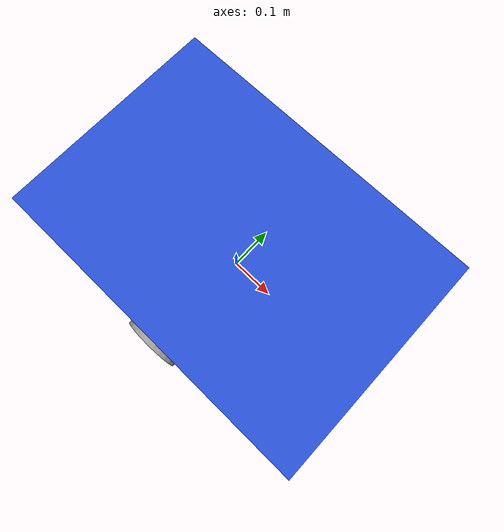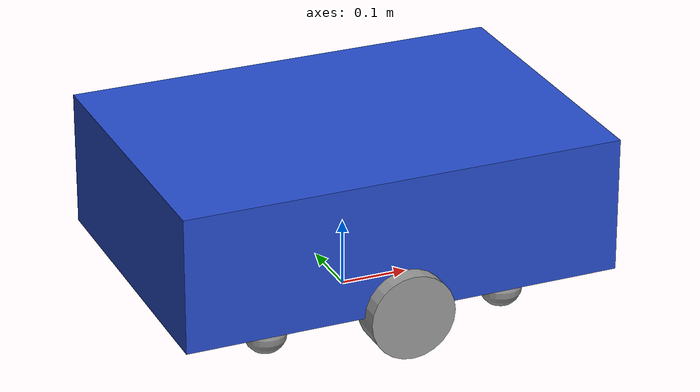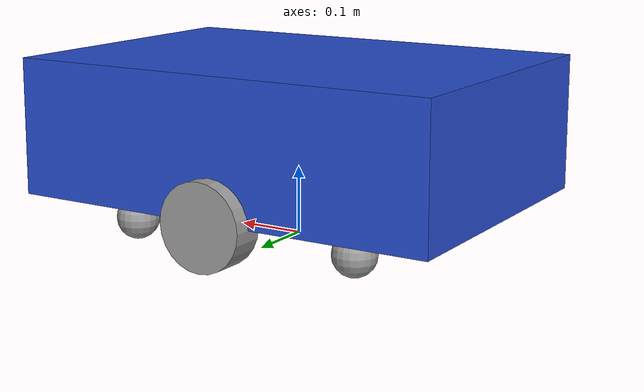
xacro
<?xml version="1.0"?>
<robot name="mapper" xmlns:xacro="http://www.ros.org/wiki/xacro">

    <xacro:include filename="common_properties.xacro" />
    <xacro:include filename="mobile_base.xacro" />
    <xacro:include filename="mobile_base_gazebo.xacro" />
    <xacro:include filename="sensors.xacro" />

</robot>

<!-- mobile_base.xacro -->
<robot xmlns:xacro="http://www.ros.org/wiki/xacro">

    <xacro:property name="base_length" value="0.65" />
    <xacro:property name="base_width" value="0.45" />
    <xacro:property name="base_height" value="0.2" />
    <xacro:property name="wheel_radius" value="0.063" />
    <xacro:property name="wheel_length" value="0.05" />

    <link name="base_footprint" />

    <link name="base_link">
        <visual>
            <geometry>
                <box size="${base_length} ${base_width} ${base_height}" />
            </geometry>
            <origin xyz="0 0 ${base_height / 2.0}" rpy="0 0 0" />
            <material name="blue" />
        </visual>
        <collision>
            <geometry>
                <box size="${base_length} ${base_width} ${base_height}" />
            </geometry>
            <origin xyz="0 0 ${base_height / 2.0}" rpy="0 0 0" />
        </collision>
        <xacro:box_inertia m="5.0" l="${2*base_length}" w="${2*base_width}" h="${2*base_height}"
                           xyz="0 0 ${base_height / 2.0}" rpy="0 0 0" />
    </link>

    <xacro:macro name="wheel_link" params="prefix">
        <link name="${prefix}_wheel_link">
            <visual>
                <geometry>
                    <cylinder radius="${wheel_radius}" length="${wheel_length}" />
                </geometry>
                <origin xyz="0 0 0" rpy="${pi / 2.0} 0 0" />
                <material name="grey" />
            </visual>
            <collision>
                <geometry>
                    <cylinder radius="${wheel_radius}" length="${wheel_length}" />
                </geometry>
                <origin xyz="0 0 0" rpy="${pi / 2.0} 0 0" />
            </collision>
            <xacro:cylinder_inertia m="1.0" r="${2*wheel_radius}" h="${2*wheel_length}"
                                    xyz="0 0 0" rpy="${pi / 2.0} 0 0" />
        </link>
    </xacro:macro>

    <xacro:wheel_link prefix="right" />
    <xacro:wheel_link prefix="left" />

   <link name="caster_wheel_link_1">
        <visual>
            <geometry>
                <sphere radius="0.0315" />
            </geometry>
            <origin xyz="0 0 0" rpy="0 0 0" />
            <material name="grey" />
        </visual>
        <collision>
            <geometry>
                <sphere radius="0.0315" />
            </geometry>
            <origin xyz="0 0 0" rpy="0 0 0" />
        </collision>
        <inertial>
            <origin xyz="0 0 0" rpy="0 0 0" />
            <mass value="0.2" />
            <inertia ixx="0.00007938" ixy="0.0" ixz="0.0" iyy="0.00007938" iyz="0.0" izz="0.00007938" />
        </inertial>
    </link>

    <link name="caster_wheel_link_2">
        <visual>
            <geometry>
                <sphere radius="0.0315" />
            </geometry>
            <origin xyz="0 0 0" rpy="0 0 0" />
            <material name="grey" />
        </visual>
        <collision>
            <geometry>
                <sphere radius="0.0315" />
            </geometry>
            <origin xyz="0 0 0" rpy="0 0 0" />
        </collision>
        <inertial>
            <origin xyz="0 0 0" rpy="0 0 0" />
            <mass value="0.2" />
            <inertia ixx="0.00007938" ixy="0.0" ixz="0.0" iyy="0.00007938" iyz="0.0" izz="0.00007938" />
        </inertial>
    </link>

    <link name="caster_wheel_link_3">
        <visual>
            <geometry>
                <sphere radius="0.0315" />
            </geometry>
            <origin xyz="0 0 0" rpy="0 0 0" />
            <material name="grey" />
        </visual>
        <collision>
            <geometry>
                <sphere radius="0.0315" />
            </geometry>
            <origin xyz="0 0 0" rpy="0 0 0" />
        </collision>
        <inertial>
            <origin xyz="0 0 0" rpy="0 0 0" />
            <mass value="0.2" />
            <inertia ixx="0.00007938" ixy="0.0" ixz="0.0" iyy="0.00007938" iyz="0.0" izz="0.00007938" />
        </inertial>
    </link>

    <link name="caster_wheel_link_4">
        <visual>
            <geometry>
                <sphere radius="0.0315" />
            </geometry>
            <origin xyz="0 0 0" rpy="0 0 0" />
            <material name="grey" />
        </visual>
        <collision>
            <geometry>
                <sphere radius="0.0315" />
            </geometry>
            <origin xyz="0 0 0" rpy="0 0 0" />
        </collision>
        <inertial>
            <origin xyz="0 0 0" rpy="0 0 0" />
            <mass value="0.2" />
            <inertia ixx="0.00007938" ixy="0.0" ixz="0.0" iyy="0.00007938" iyz="0.0" izz="0.00007938" />
        </inertial>
    </link>

    <joint name="base_joint" type="fixed">
        <parent link="base_footprint" />
        <child link="base_link" />
        <origin xyz="0 0 ${wheel_radius}" rpy="0 0 0"/>
    </joint>

    <joint name="base_right_wheel_joint" type="continuous">
        <parent link="base_link" />
        <child link="right_wheel_link" />
        <origin xyz="0 -0.225 0" rpy="0 0 0" />
        <axis xyz="0 1 0" />
    </joint>

    <joint name="base_left_wheel_joint" type="continuous">
        <parent link="base_link" />
        <child link="left_wheel_link" />
        <origin xyz="0 0.225 0" rpy="0 0 0" />
        <axis xyz="0 1 0" />
    </joint>

    <joint name="base_caster_wheel_1_joint" type="fixed">
        <parent link="base_link" />
        <child link="caster_wheel_link_1" />
        <origin xyz="-0.181 -0.15 -0.0315" rpy="0 0 0" />
    </joint>

    <joint name="base_caster_wheel_2_joint" type="fixed">
        <parent link="base_link" />
        <child link="caster_wheel_link_2" />
        <origin xyz="-0.181 0.15 -0.0315" rpy="0 0 0" />
    </joint>

    <joint name="base_caster_wheel_3_joint" type="fixed">
        <parent link="base_link" />
        <child link="caster_wheel_link_3" />
        <origin xyz="0.181 0.15 -0.0315" rpy="0 0 0" />
    </joint>

    <joint name="base_caster_wheel_4_joint" type="fixed">
        <parent link="base_link" />
        <child link="caster_wheel_link_4" />
        <origin xyz="0.181 -0.15 -0.0315" rpy="0 0 0" />
    </joint>

</robot>

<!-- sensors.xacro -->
<robot xmlns:xacro="http://www.ros.org/wiki/xacro" >

    <!-- Down -->

    <!-- Front -->

    <joint name="lidar_joint" type="fixed">
        <parent link="base_link"/>
        <child link="lidar_link"/>
        <origin xyz="0 0 0.095" rpy="0 0 0"/>
    </joint>

    <link name="lidar_link">
        <visual>
            <geometry>
                <cylinder radius="0.05" length="0.03"/>
            </geometry>
            <material name="grey"/>
        </visual>
        <collision>
            <geometry>
                <cylinder radius="0.05" length="0.03"/>
            </geometry>
        </collision>
        <xacro:cylinder_inertia m="1.0" r="0.05" h="0.03"
                                    xyz="0 0 0.095" rpy="0 0 0" />
    </link>
    <joint name="imu_joint" type="fixed">
        <parent link="base_link"/>
        <child link="imu_link"/>
        <origin xyz="0 0 0.04" rpy="0 0 0"/>
    </joint>

    <link name="imu_link">
        <visual>
            <geometry>
                <box size="0.05 0.05 0.02"/>
            </geometry>
            <material name="grey"/>
        </visual>
        <collision>
            <geometry>
                <box size="0.1 0.1 0.1"/>
            </geometry>
        </collision>
        <xacro:box_inertia m="0.1" l="0.1" w="0.1" h="0.1"
                           xyz="0 0 0" rpy="0 0 0" />
    </link>
    <joint name="camera_joint" type="fixed">
        <parent link="base_link"/>
        <child link="camera_link"/>
        <origin xyz="0.156 0 0.08" rpy="0 0 0"/>
    </joint>

    <link name="camera_link">
        <visual>
            <geometry>
                <box size="0.010 0.06 0.02"/>
            </geometry>
            <material name="grey"/>
        </visual>
        <collision>
            <geometry>
                <box size="0.1 0.1 0.1"/>
            </geometry>
        </collision>
        <xacro:box_inertia m="0.1" l="0.1" w="0.1" h="0.1"
                           xyz="0 0 0" rpy="0 0 0" />
    </link>

    <gazebo reference="lidar_link">
        <material>Gazebo/Grey</material>

        <sensor name="laser" type="ray">
            <pose> 0 0 0 0 0 0 </pose>
            <visualize>true</visualize>
            <update_rate>20</update_rate>
            <ray>
                <scan>
                    <horizontal>
                        <samples>360</samples>
                        <min_angle>-3.14</min_angle>
                        <max_angle>3.14</max_angle>
                    </horizontal>
                </scan>
                <range>
                    <min>0.3</min>
                    <max>12</max>
                </range>
            </ray>
            <plugin name="laser_controller" filename="libgazebo_ros_ray_sensor.so">
                <ros>
                    <argument>~/out:=scan</argument>
                </ros>
                <output_type>sensor_msgs/LaserScan</output_type>
                <frame_name>lidar_link</frame_name>
            </plugin>
        </sensor>
    </gazebo>
    <gazebo reference="base_sonar_front">
        <sensor type="ray" name="TeraRanger">
            <pose>0 0 2 0 0 0</pose>
            <visualize>true</visualize>
            <update_rate>20</update_rate>
            <ray>
                <scan>
                    <horizontal>
                        <samples>10</samples>
                        <resolution>1</resolution>
                        <min_angle>-0.18326</min_angle>
                        <max_angle>0.18326</max_angle>
                    </horizontal>
                    <vertical>
                        <samples>1</samples>
                        <resolution>1</resolution>
                        <min_angle>0</min_angle>
                        <max_angle>0</max_angle>
                    </vertical>
                </scan>
                <range>
                    <min>0.005</min>
                    <max>5.0</max>
                    <resolution>0.02</resolution>
                </range>
            </ray>
            <plugin name="sonar_plugin" filename="libgazebo_ros_ray_sensor.so">
                <ros>
                    <namespace>sensor</namespace>
                    <argument>sonar_front:=sonar_front</argument>
                </ros>
                <output_type>sensor_msgs/LaserScan</output_type>
                <topicName>sonar_front</topicName>
                <frameName>base_sonar_front</frameName>
                <updateRate>20</updateRate>
                <gaussianNoise>0.01</gaussianNoise>
                <radiation>ultrasound</radiation>
            </plugin>
        </sensor>
    </gazebo>
    <gazebo reference="camera_link">
        <material>Gazebo/Grey</material>

        <sensor name="camera" type="camera">
            <pose> 0 0 0 0 0 0 </pose>
            <visualize>true</visualize>
            <update_rate>50</update_rate>
            <camera>
                <horizontal_fov>1.03</horizontal_fov>
                <image>
                    <format>R8G8B8</format>
                    <width>640</width>
                    <height>480</height>
                </image>
                <clip>
                    <near>0.05</near>
                    <far>8.0</far>
                </clip>
            </camera>
            <plugin name="camera_controller" filename="libgazebo_ros_camera.so">
                <frame_name>camera_link</frame_name>
            </plugin>
        </sensor>
    </gazebo>

</robot>
